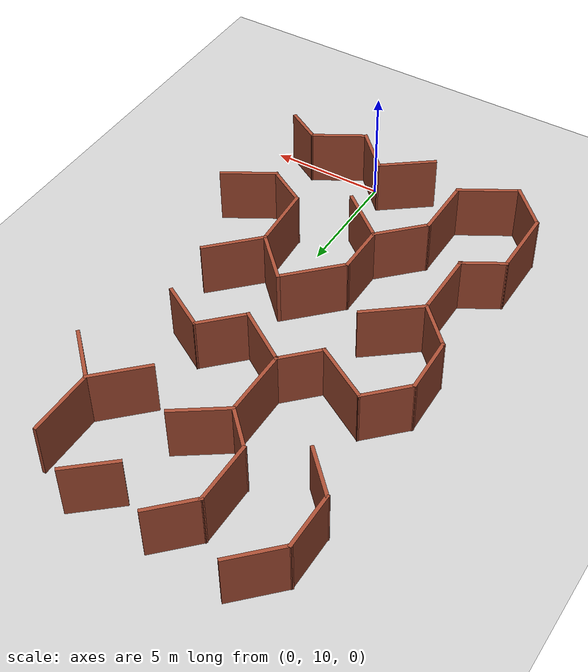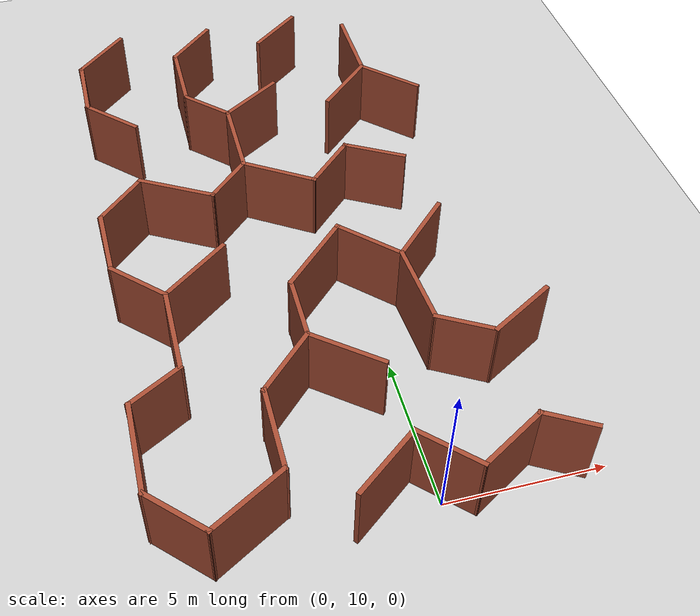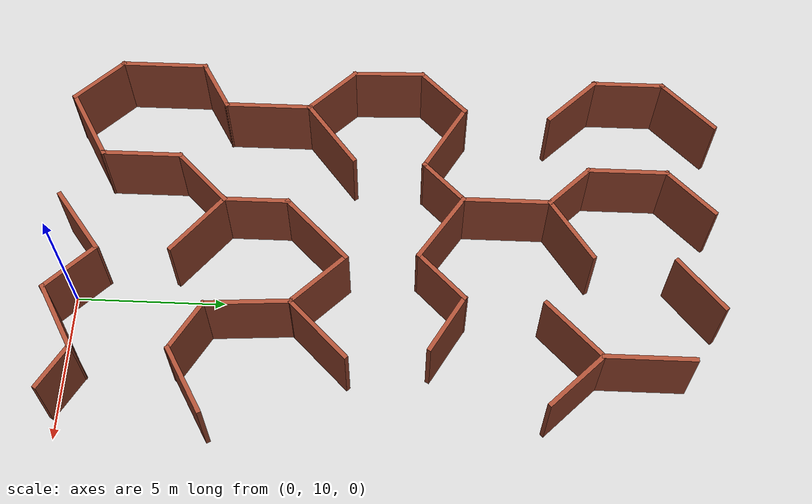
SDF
<sdf version="1.6">
 <world name="default">
  <model name="maze_rect_3">
   <pose>4e-06 -9.9e-05 0 0 -0 1.57001</pose>
   <link name="Wall_272">
    <collision name="Wall_272_Collision">
     <geometry><box><size>3 0.15 2.5</size></box></geometry>
     <pose>0 0 1.25 0 -0 0</pose>
    </collision>
    <visual name="Wall_272_Visual">
     <pose>0 0 1.25 0 -0 0</pose>
     <geometry><box><size>3 0.15 2.5</size></box></geometry>
     <material>
      <script><uri>file://media/materials/scripts/gazebo.material</uri><name>Gazebo/Bricks</name></script>
      <ambient>1 1 1 1</ambient>
     </material>
     <meta><layer>0</layer></meta>
    </visual>
    <pose>28.6585 -2.52997 0 0 -0 3.14159</pose>
   </link>
   <link name="Wall_273">
    <collision name="Wall_273_Collision">
     <geometry><box><size>2.5 0.15 2.5</size></box></geometry>
     <pose>0 0 1.25 0 -0 0</pose>
    </collision>
    <visual name="Wall_273_Visual">
     <pose>0 0 1.25 0 -0 0</pose>
     <geometry><box><size>2.5 0.15 2.5</size></box></geometry>
     <material>
      <script><uri>file://media/materials/scripts/gazebo.material</uri><name>Gazebo/Bricks</name></script>
      <ambient>1 1 1 1</ambient>
     </material>
     <meta><layer>0</layer></meta>
    </visual>
    <pose>26.4026 -3.36082 0 0 -0 -2.35619</pose>
   </link>
   <link name="Wall_279">
    <collision name="Wall_279_Collision">
     <geometry><box><size>2.63356 0.15 2.5</size></box></geometry>
     <pose>0 0 1.25 0 -0 0</pose>
    </collision>
    <visual name="Wall_279_Visual">
     <pose>0 0 1.25 0 -0 0</pose>
     <geometry><box><size>2.63356 0.15 2.5</size></box></geometry>
     <material>
      <script><uri>file://media/materials/scripts/gazebo.material</uri><name>Gazebo/Bricks</name></script>
      <ambient>1 1 1 1</ambient>
     </material>
     <meta><layer>0</layer></meta>
    </visual>
    <pose>26.3646 -1.64285 0 0 -0 -0.795761</pose>
   </link>
   <link name="Wall_281">
    <collision name="Wall_281_Collision">
     <geometry><box><size>2.31648 0.15 2.5</size></box></geometry>
     <pose>0 0 1.25 0 -0 0</pose>
    </collision>
    <visual name="Wall_281_Visual">
     <pose>0 0 1.25 0 -0 0</pose>
     <geometry><box><size>2.31648 0.15 2.5</size></box></geometry>
     <material>
      <script><uri>file://media/materials/scripts/gazebo.material</uri><name>Gazebo/Bricks</name></script>
      <ambient>1 1 1 1</ambient>
     </material>
     <meta><layer>0</layer></meta>
    </visual>
    <pose>30.4306 0.112876 0 0 -0 -0.864644</pose>
   </link>
   <link name="Wall_324">
    <collision name="Wall_324_Collision">
     <geometry><box><size>2.5 0.15 2.5</size></box></geometry>
     <pose>0 0 1.25 0 -0 0</pose>
    </collision>
    <visual name="Wall_324_Visual">
     <pose>0 0 1.25 0 -0 0</pose>
     <geometry><box><size>2.5 0.15 2.5</size></box></geometry>
     <material>
      <script><uri>file://media/materials/scripts/gazebo.material</uri><name>Gazebo/Bricks</name></script>
      <ambient>1 1 1 1</ambient>
     </material>
     <meta><layer>0</layer></meta>
    </visual>
    <pose>30.4716 7.01358 0 0 -0 2.35619</pose>
   </link>
   <link name="Wall_325">
    <collision name="Wall_325_Collision">
     <geometry><box><size>2.5 0.15 2.5</size></box></geometry>
     <pose>0 0 1.25 0 -0 0</pose>
    </collision>
    <visual name="Wall_325_Visual">
     <pose>0 0 1.25 0 -0 0</pose>
     <geometry><box><size>2.5 0.15 2.5</size></box></geometry>
     <material>
      <script><uri>file://media/materials/scripts/gazebo.material</uri><name>Gazebo/Bricks</name></script>
      <ambient>1 1 1 1</ambient>
     </material>
     <meta><layer>0</layer></meta>
    </visual>
    <pose>28.4657 7.84443 0 0 -0 3.14159</pose>
   </link>
   <link name="Wall_342">
    <collision name="Wall_342_Collision">
     <geometry><box><size>2.25 0.15 2.5</size></box></geometry>
     <pose>0 0 1.25 0 -0 0</pose>
    </collision>
    <visual name="Wall_342_Visual">
     <pose>0 0 1.25 0 -0 0</pose>
     <geometry><box><size>2.25 0.15 2.5</size></box></geometry>
     <material>
      <script><uri>file://media/materials/scripts/gazebo.material</uri><name>Gazebo/Bricks</name></script>
      <ambient>1 1 1 1</ambient>
     </material>
     <meta><layer>0</layer></meta>
    </visual>
    <pose>30.33 3.52119 0 0 -0 2.35619</pose>
   </link>
   <link name="Wall_343">
    <collision name="Wall_343_Collision">
     <geometry><box><size>2.75 0.15 2.5</size></box></geometry>
     <pose>0 0 1.25 0 -0 0</pose>
    </collision>
    <visual name="Wall_343_Visual">
     <pose>0 0 1.25 0 -0 0</pose>
     <geometry><box><size>2.75 0.15 2.5</size></box></geometry>
     <material>
      <script><uri>file://media/materials/scripts/gazebo.material</uri><name>Gazebo/Bricks</name></script>
      <ambient>1 1 1 1</ambient>
     </material>
     <meta><layer>0</layer></meta>
    </visual>
    <pose>28.2875 4.26365 0 0 -0 3.14159</pose>
   </link>
   <link name="Wall_344">
    <collision name="Wall_344_Collision">
     <geometry><box><size>2 0.15 2.5</size></box></geometry>
     <pose>0 0 1.25 0 -0 0</pose>
    </collision>
    <visual name="Wall_344_Visual">
     <pose>0 0 1.25 0 -0 0</pose>
     <geometry><box><size>2 0.15 2.5</size></box></geometry>
     <material>
      <script><uri>file://media/materials/scripts/gazebo.material</uri><name>Gazebo/Bricks</name></script>
      <ambient>1 1 1 1</ambient>
     </material>
     <meta><layer>0</layer></meta>
    </visual>
    <pose>26.3334 3.60958 0 0 -0 -2.35619</pose>
   </link>
   <link name="Wall_345">
    <collision name="Wall_345_Collision">
     <geometry><box><size>3 0.15 2.5</size></box></geometry>
     <pose>0 0 1.25 0 -0 0</pose>
    </collision>
    <visual name="Wall_345_Visual">
     <pose>0 0 1.25 0 -0 0</pose>
     <geometry><box><size>3 0.15 2.5</size></box></geometry>
     <material>
      <script><uri>file://media/materials/scripts/gazebo.material</uri><name>Gazebo/Bricks</name></script>
      <ambient>1 1 1 1</ambient>
     </material>
     <meta><layer>0</layer></meta>
    </visual>
    <pose>24.2544 2.95551 0 0 -0 3.14159</pose>
   </link>
   <link name="Wall_346">
    <collision name="Wall_346_Collision">
     <geometry><box><size>2 0.15 2.5</size></box></geometry>
     <pose>0 0 1.25 0 -0 0</pose>
    </collision>
    <visual name="Wall_346_Visual">
     <pose>0 0 1.25 0 -0 0</pose>
     <geometry><box><size>2 0.15 2.5</size></box></geometry>
     <material>
      <script><uri>file://media/materials/scripts/gazebo.material</uri><name>Gazebo/Bricks</name></script>
      <ambient>1 1 1 1</ambient>
     </material>
     <meta><layer>0</layer></meta>
    </visual>
    <pose>22.1753 3.60958 0 0 -0 2.35619</pose>
   </link>
   <link name="Wall_347">
    <collision name="Wall_347_Collision">
     <geometry><box><size>2.75 0.15 2.5</size></box></geometry>
     <pose>0 0 1.25 0 -0 0</pose>
    </collision>
    <visual name="Wall_347_Visual">
     <pose>0 0 1.25 0 -0 0</pose>
     <geometry><box><size>2.75 0.15 2.5</size></box></geometry>
     <material>
      <script><uri>file://media/materials/scripts/gazebo.material</uri><name>Gazebo/Bricks</name></script>
      <ambient>1 1 1 1</ambient>
     </material>
     <meta><layer>0</layer></meta>
    </visual>
    <pose>22.1712 5.38949 0 0 -0 1.0472</pose>
   </link>
   <link name="Wall_348">
    <collision name="Wall_348_Collision">
     <geometry><box><size>2.25 0.15 2.5</size></box></geometry>
     <pose>0 0 1.25 0 -0 0</pose>
    </collision>
    <visual name="Wall_348_Visual">
     <pose>0 0 1.25 0 -0 0</pose>
     <geometry><box><size>2.25 0.15 2.5</size></box></geometry>
     <material>
      <script><uri>file://media/materials/scripts/gazebo.material</uri><name>Gazebo/Bricks</name></script>
      <ambient>1 1 1 1</ambient>
     </material>
     <meta><layer>0</layer></meta>
    </visual>
    <pose>22.0787 7.25778 0 0 -0 2.35619</pose>
   </link>
   <link name="Wall_356">
    <collision name="Wall_356_Collision">
     <geometry><box><size>2.55429 0.15 2.5</size></box></geometry>
     <pose>0 0 1.25 0 -0 0</pose>
    </collision>
    <visual name="Wall_356_Visual">
     <pose>0 0 1.25 0 -0 0</pose>
     <geometry><box><size>2.55429 0.15 2.5</size></box></geometry>
     <material>
      <script><uri>file://media/materials/scripts/gazebo.material</uri><name>Gazebo/Bricks</name></script>
      <ambient>1 1 1 1</ambient>
     </material>
     <meta><layer>0</layer></meta>
    </visual>
    <pose>26.3574 1.96284 0 0 -0 2.17007</pose>
   </link>
   <link name="Wall_358">
    <collision name="Wall_358_Collision">
     <geometry><box><size>2.25 0.15 2.5</size></box></geometry>
     <pose>0 0 1.25 0 -0 0</pose>
    </collision>
    <visual name="Wall_358_Visual">
     <pose>0 0 1.25 0 -0 0</pose>
     <geometry><box><size>2.25 0.15 2.5</size></box></geometry>
     <material>
      <script><uri>file://media/materials/scripts/gazebo.material</uri><name>Gazebo/Bricks</name></script>
      <ambient>1 1 1 1</ambient>
     </material>
     <meta><layer>0</layer></meta>
    </visual>
    <pose>22.3895 -1.5881 0 0 -0 1.0472</pose>
   </link>
   <link name="Wall_359">
    <collision name="Wall_359_Collision">
     <geometry><box><size>2.25 0.15 2.5</size></box></geometry>
     <pose>0 0 1.25 0 -0 0</pose>
    </collision>
    <visual name="Wall_359_Visual">
     <pose>0 0 1.25 0 -0 0</pose>
     <geometry><box><size>2.25 0.15 2.5</size></box></geometry>
     <material>
      <script><uri>file://media/materials/scripts/gazebo.material</uri><name>Gazebo/Bricks</name></script>
      <ambient>1 1 1 1</ambient>
     </material>
     <meta><layer>0</layer></meta>
    </visual>
    <pose>22.172 0.063689 0 0 -0 2.35619</pose>
   </link>
   <link name="Wall_360">
    <collision name="Wall_360_Collision">
     <geometry><box><size>2.71498 0.15 2.5</size></box></geometry>
     <pose>0 0 1.25 0 -0 0</pose>
    </collision>
    <visual name="Wall_360_Visual">
     <pose>0 0 1.25 0 -0 0</pose>
     <geometry><box><size>2.71498 0.15 2.5</size></box></geometry>
     <material>
      <script><uri>file://media/materials/scripts/gazebo.material</uri><name>Gazebo/Bricks</name></script>
      <ambient>1 1 1 1</ambient>
     </material>
     <meta><layer>0</layer></meta>
    </visual>
    <pose>22.1295 1.88083 0 0 -0 0.993536</pose>
   </link>
   <link name="Wall_362">
    <collision name="Wall_362_Collision">
     <geometry><box><size>2.75 0.15 2.5</size></box></geometry>
     <pose>0 0 1.25 0 -0 0</pose>
    </collision>
    <visual name="Wall_362_Visual">
     <pose>0 0 1.25 0 -0 0</pose>
     <geometry><box><size>2.75 0.15 2.5</size></box></geometry>
     <material>
      <script><uri>file://media/materials/scripts/gazebo.material</uri><name>Gazebo/Bricks</name></script>
      <ambient>1 1 1 1</ambient>
     </material>
     <meta><layer>0</layer></meta>
    </visual>
    <pose>18.3294 -1.9432 0 0 -0 2.35619</pose>
   </link>
   <link name="Wall_363">
    <collision name="Wall_363_Collision">
     <geometry><box><size>2.5 0.15 2.5</size></box></geometry>
     <pose>0 0 1.25 0 -0 0</pose>
    </collision>
    <visual name="Wall_363_Visual">
     <pose>0 0 1.25 0 -0 0</pose>
     <geometry><box><size>2.5 0.15 2.5</size></box></geometry>
     <material>
      <script><uri>file://media/materials/scripts/gazebo.material</uri><name>Gazebo/Bricks</name></script>
      <ambient>1 1 1 1</ambient>
     </material>
     <meta><layer>0</layer></meta>
    </visual>
    <pose>18.241 -0.193108 0 0 -0 0.785398</pose>
   </link>
   <link name="Wall_364">
    <collision name="Wall_364_Collision">
     <geometry><box><size>3 0.15 2.5</size></box></geometry>
     <pose>0 0 1.25 0 -0 0</pose>
    </collision>
    <visual name="Wall_364_Visual">
     <pose>0 0 1.25 0 -0 0</pose>
     <geometry><box><size>3 0.15 2.5</size></box></geometry>
     <material>
      <script><uri>file://media/materials/scripts/gazebo.material</uri><name>Gazebo/Bricks</name></script>
      <ambient>1 1 1 1</ambient>
     </material>
     <meta><layer>0</layer></meta>
    </visual>
    <pose>18.0642 1.64537 0 0 -0 2.35619</pose>
   </link>
   <link name="Wall_365">
    <collision name="Wall_365_Collision">
     <geometry><box><size>2.25 0.15 2.5</size></box></geometry>
     <pose>0 0 1.25 0 -0 0</pose>
    </collision>
    <visual name="Wall_365_Visual">
     <pose>0 0 1.25 0 -0 0</pose>
     <geometry><box><size>2.25 0.15 2.5</size></box></geometry>
     <material>
      <script><uri>file://media/materials/scripts/gazebo.material</uri><name>Gazebo/Bricks</name></script>
      <ambient>1 1 1 1</ambient>
     </material>
     <meta><layer>0</layer></meta>
    </visual>
    <pose>16.0066 2.653 0 0 -0 3.14159</pose>
   </link>
   <link name="Wall_366">
    <collision name="Wall_366_Collision">
     <geometry><box><size>2.5 0.15 2.5</size></box></geometry>
     <pose>0 0 1.25 0 -0 0</pose>
    </collision>
    <visual name="Wall_366_Visual">
     <pose>0 0 1.25 0 -0 0</pose>
     <geometry><box><size>2.5 0.15 2.5</size></box></geometry>
     <material>
      <script><uri>file://media/materials/scripts/gazebo.material</uri><name>Gazebo/Bricks</name></script>
      <ambient>1 1 1 1</ambient>
     </material>
     <meta><layer>0</layer></meta>
    </visual>
    <pose>14.1257 3.48385 0 0 -0 2.35619</pose>
   </link>
   <link name="Wall_367">
    <collision name="Wall_367_Collision">
     <geometry><box><size>2.75 0.15 2.5</size></box></geometry>
     <pose>0 0 1.25 0 -0 0</pose>
    </collision>
    <visual name="Wall_367_Visual">
     <pose>0 0 1.25 0 -0 0</pose>
     <geometry><box><size>2.75 0.15 2.5</size></box></geometry>
     <material>
      <script><uri>file://media/materials/scripts/gazebo.material</uri><name>Gazebo/Bricks</name></script>
      <ambient>1 1 1 1</ambient>
     </material>
     <meta><layer>0</layer></meta>
    </visual>
    <pose>11.9949 4.3147 0 0 -0 3.14159</pose>
   </link>
   <link name="Wall_368">
    <collision name="Wall_368_Collision">
     <geometry><box><size>2.75 0.15 2.5</size></box></geometry>
     <pose>0 0 1.25 0 -0 0</pose>
    </collision>
    <visual name="Wall_368_Visual">
     <pose>0 0 1.25 0 -0 0</pose>
     <geometry><box><size>2.75 0.15 2.5</size></box></geometry>
     <material>
      <script><uri>file://media/materials/scripts/gazebo.material</uri><name>Gazebo/Bricks</name></script>
      <ambient>1 1 1 1</ambient>
     </material>
     <meta><layer>0</layer></meta>
    </visual>
    <pose>10.0449 5.44053 0 0 -0 2.0944</pose>
   </link>
   <link name="Wall_369">
    <collision name="Wall_369_Collision">
     <geometry><box><size>2.25 0.15 2.5</size></box></geometry>
     <pose>0 0 1.25 0 -0 0</pose>
    </collision>
    <visual name="Wall_369_Visual">
     <pose>0 0 1.25 0 -0 0</pose>
     <geometry><box><size>2.25 0.15 2.5</size></box></geometry>
     <material>
      <script><uri>file://media/materials/scripts/gazebo.material</uri><name>Gazebo/Bricks</name></script>
      <ambient>1 1 1 1</ambient>
     </material>
     <meta><layer>0</layer></meta>
    </visual>
    <pose>10.1373 7.30882 0 0 -0 0.785398</pose>
   </link>
   <link name="Wall_370">
    <collision name="Wall_370_Collision">
     <geometry><box><size>3 0.15 2.5</size></box></geometry>
     <pose>0 0 1.25 0 -0 0</pose>
    </collision>
    <visual name="Wall_370_Visual">
     <pose>0 0 1.25 0 -0 0</pose>
     <geometry><box><size>3 0.15 2.5</size></box></geometry>
     <material>
      <script><uri>file://media/materials/scripts/gazebo.material</uri><name>Gazebo/Bricks</name></script>
      <ambient>1 1 1 1</ambient>
     </material>
     <meta><layer>0</layer></meta>
    </visual>
    <pose>12.3048 8.05129 0 0 -0 0</pose>
   </link>
   <link name="Wall_371">
    <collision name="Wall_371_Collision">
     <geometry><box><size>2 0.15 2.5</size></box></geometry>
     <pose>0 0 1.25 0 -0 0</pose>
    </collision>
    <visual name="Wall_371_Visual">
     <pose>0 0 1.25 0 -0 0</pose>
     <geometry><box><size>2 0.15 2.5</size></box></geometry>
     <material>
      <script><uri>file://media/materials/scripts/gazebo.material</uri><name>Gazebo/Bricks</name></script>
      <ambient>1 1 1 1</ambient>
     </material>
     <meta><layer>0</layer></meta>
    </visual>
    <pose>14.1923 7.25021 0 0 -0 -1.0472</pose>
   </link>
   <link name="Wall_372">
    <collision name="Wall_372_Collision">
     <geometry><box><size>3 0.15 2.5</size></box></geometry>
     <pose>0 0 1.25 0 -0 0</pose>
    </collision>
    <visual name="Wall_372_Visual">
     <pose>0 0 1.25 0 -0 0</pose>
     <geometry><box><size>3 0.15 2.5</size></box></geometry>
     <material>
      <script><uri>file://media/materials/scripts/gazebo.material</uri><name>Gazebo/Bricks</name></script>
      <ambient>1 1 1 1</ambient>
     </material>
     <meta><layer>0</layer></meta>
    </visual>
    <pose>16.0798 6.44914 0 0 -0 0</pose>
   </link>
   <link name="Wall_373">
    <collision name="Wall_373_Collision">
     <geometry><box><size>2.25 0.15 2.5</size></box></geometry>
     <pose>0 0 1.25 0 -0 0</pose>
    </collision>
    <visual name="Wall_373_Visual">
     <pose>0 0 1.25 0 -0 0</pose>
     <geometry><box><size>2.25 0.15 2.5</size></box></geometry>
     <material>
      <script><uri>file://media/materials/scripts/gazebo.material</uri><name>Gazebo/Bricks</name></script>
      <ambient>1 1 1 1</ambient>
     </material>
     <meta><layer>0</layer></meta>
    </visual>
    <pose>18.2472 7.1916 0 0 -0 0.785398</pose>
   </link>
   <link name="Wall_374">
    <collision name="Wall_374_Collision">
     <geometry><box><size>2.49751 0.15 2.5</size></box></geometry>
     <pose>0 0 1.25 0 -0 0</pose>
    </collision>
    <visual name="Wall_374_Visual">
     <pose>0 0 1.25 0 -0 0</pose>
     <geometry><box><size>2.49751 0.15 2.5</size></box></geometry>
     <material>
      <script><uri>file://media/materials/scripts/gazebo.material</uri><name>Gazebo/Bricks</name></script>
      <ambient>1 1 1 1</ambient>
     </material>
     <meta><layer>0</layer></meta>
    </visual>
    <pose>20.163 7.96715 0 0 -0 0.028195</pose>
   </link>
   <link name="Wall_376">
    <collision name="Wall_376_Collision">
     <geometry><box><size>2.78161 0.15 2.5</size></box></geometry>
     <pose>0 0 1.25 0 -0 0</pose>
    </collision>
    <visual name="Wall_376_Visual">
     <pose>0 0 1.25 0 -0 0</pose>
     <geometry><box><size>2.78161 0.15 2.5</size></box></geometry>
     <material>
      <script><uri>file://media/materials/scripts/gazebo.material</uri><name>Gazebo/Bricks</name></script>
      <ambient>1 1 1 1</ambient>
     </material>
     <meta><layer>0</layer></meta>
    </visual>
    <pose>18.3158 5.41303 0 0 -0 2.23496</pose>
   </link>
   <link name="Wall_378">
    <collision name="Wall_378_Collision">
     <geometry><box><size>2.6212 0.15 2.5</size></box></geometry>
     <pose>0 0 1.25 0 -0 0</pose>
    </collision>
    <visual name="Wall_378_Visual">
     <pose>0 0 1.25 0 -0 0</pose>
     <geometry><box><size>2.6212 0.15 2.5</size></box></geometry>
     <material>
      <script><uri>file://media/materials/scripts/gazebo.material</uri><name>Gazebo/Bricks</name></script>
      <ambient>1 1 1 1</ambient>
     </material>
     <meta><layer>0</layer></meta>
    </visual>
    <pose>14.1825 1.68991 0 0 -0 0.893782</pose>
   </link>
   <link name="Wall_384">
    <collision name="Wall_384_Collision">
     <geometry><box><size>2.5 0.15 2.5</size></box></geometry>
     <pose>0 0 1.25 0 -0 0</pose>
    </collision>
    <visual name="Wall_384_Visual">
     <pose>0 0 1.25 0 -0 0</pose>
     <geometry><box><size>2.5 0.15 2.5</size></box></geometry>
     <material>
      <script><uri>file://media/materials/scripts/gazebo.material</uri><name>Gazebo/Bricks</name></script>
      <ambient>1 1 1 1</ambient>
     </material>
     <meta><layer>0</layer></meta>
    </visual>
    <pose>14.3417 -3.81921 0 0 -0 2.0944</pose>
   </link>
   <link name="Wall_385">
    <collision name="Wall_385_Collision">
     <geometry><box><size>2 0.15 2.5</size></box></geometry>
     <pose>0 0 1.25 0 -0 0</pose>
    </collision>
    <visual name="Wall_385_Visual">
     <pose>0 0 1.25 0 -0 0</pose>
     <geometry><box><size>2 0.15 2.5</size></box></geometry>
     <material>
      <script><uri>file://media/materials/scripts/gazebo.material</uri><name>Gazebo/Bricks</name></script>
      <ambient>1 1 1 1</ambient>
     </material>
     <meta><layer>0</layer></meta>
    </visual>
    <pose>14.2167 -2.00056 0 0 -0 1.0472</pose>
   </link>
   <link name="Wall_386">
    <collision name="Wall_386_Collision">
     <geometry><box><size>2.88652 0.15 2.5</size></box></geometry>
     <pose>0 0 1.25 0 -0 0</pose>
    </collision>
    <visual name="Wall_386_Visual">
     <pose>0 0 1.25 0 -0 0</pose>
     <geometry><box><size>2.88652 0.15 2.5</size></box></geometry>
     <material>
      <script><uri>file://media/materials/scripts/gazebo.material</uri><name>Gazebo/Bricks</name></script>
      <ambient>1 1 1 1</ambient>
     </material>
     <meta><layer>0</layer></meta>
    </visual>
    <pose>16.0447 -1.11172 0 0 -0 0.064187</pose>
   </link>
   <link name="Wall_395">
    <collision name="Wall_395_Collision">
     <geometry><box><size>2.33291 0.15 2.5</size></box></geometry>
     <pose>0 0 1.25 0 -0 0</pose>
    </collision>
    <visual name="Wall_395_Visual">
     <pose>0 0 1.25 0 -0 0</pose>
     <geometry><box><size>2.33291 0.15 2.5</size></box></geometry>
     <material>
      <script><uri>file://media/materials/scripts/gazebo.material</uri><name>Gazebo/Bricks</name></script>
      <ambient>1 1 1 1</ambient>
     </material>
     <meta><layer>0</layer></meta>
    </visual>
    <pose>26.5145 7.0771 0 0 -0 0.779649</pose>
   </link>
   <link name="Wall_89">
    <collision name="Wall_89_Collision">
     <geometry><box><size>1.75 0.15 2.5</size></box></geometry>
     <pose>0 0 1.25 0 -0 0</pose>
    </collision>
    <visual name="Wall_89_Visual">
     <pose>0 0 1.25 0 -0 0</pose>
     <geometry><box><size>1.75 0.15 2.5</size></box></geometry>
     <material>
      <script><uri>file://media/materials/scripts/gazebo.material</uri><name>Gazebo/Bricks</name></script>
      <ambient>1 1 1 1</ambient>
     </material>
     <meta><layer>0</layer></meta>
    </visual>
    <pose>10.2918 -3.54853 0 0 -0 1.0472</pose>
   </link>
   <link name="Wall_90">
    <collision name="Wall_90_Collision">
     <geometry><box><size>2.5 0.15 2.5</size></box></geometry>
     <pose>0 0 1.25 0 -0 0</pose>
    </collision>
    <visual name="Wall_90_Visual">
     <pose>0 0 1.25 0 -0 0</pose>
     <geometry><box><size>2.5 0.15 2.5</size></box></geometry>
     <material>
      <script><uri>file://media/materials/scripts/gazebo.material</uri><name>Gazebo/Bricks</name></script>
      <ambient>1 1 1 1</ambient>
     </material>
     <meta><layer>0</layer></meta>
    </visual>
    <pose>10.1043 -1.83813 0 0 -0 2.0944</pose>
   </link>
   <link name="Wall_91">
    <collision name="Wall_91_Collision">
     <geometry><box><size>2.25 0.15 2.5</size></box></geometry>
     <pose>0 0 1.25 0 -0 0</pose>
    </collision>
    <visual name="Wall_91_Visual">
     <pose>0 0 1.25 0 -0 0</pose>
     <geometry><box><size>2.25 0.15 2.5</size></box></geometry>
     <material>
      <script><uri>file://media/materials/scripts/gazebo.material</uri><name>Gazebo/Bricks</name></script>
      <ambient>1 1 1 1</ambient>
     </material>
     <meta><layer>0</layer></meta>
    </visual>
    <pose>10.2593 -0.078091 0 0 -0 0.785398</pose>
   </link>
   <link name="Wall_92">
    <collision name="Wall_92_Collision">
     <geometry><box><size>2.60116 0.15 2.5</size></box></geometry>
     <pose>0 0 1.25 0 -0 0</pose>
    </collision>
    <visual name="Wall_92_Visual">
     <pose>0 0 1.25 0 -0 0</pose>
     <geometry><box><size>2.60116 0.15 2.5</size></box></geometry>
     <material>
      <script><uri>file://media/materials/scripts/gazebo.material</uri><name>Gazebo/Bricks</name></script>
      <ambient>1 1 1 1</ambient>
     </material>
     <meta><layer>0</layer></meta>
    </visual>
    <pose>10.2598 1.63983 0 0 -0 2.22107</pose>
   </link>
   <static>1</static>
  </model>
  <model name="ground_plane">
   <static>1</static>
   <link name="link">
    <collision name="collision">
     <geometry><plane><normal>0 0 1</normal><size>100 100</size></plane></geometry>
     <surface>
      <contact><collide_bitmask>65535</collide_bitmask></contact>
      <friction><ode><mu>100</mu><mu2>50</mu2></ode></friction>
     </surface>
    </collision>
    <visual name="visual">
     <cast_shadows>0</cast_shadows>
     <geometry><plane><normal>0 0 1</normal><size>100 100</size></plane></geometry>
     <material>
      <script><uri>file://media/materials/scripts/gazebo.material</uri><name>Gazebo/Grey</name></script>
     </material>
    </visual>
   </link>
   <pose>9.31394 52.073 0 0 -0 0</pose>
  </model>
 </world>
</sdf>
